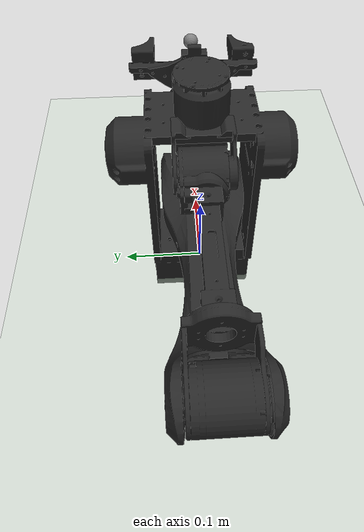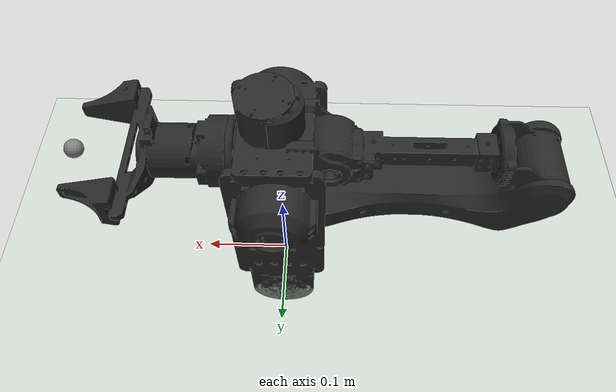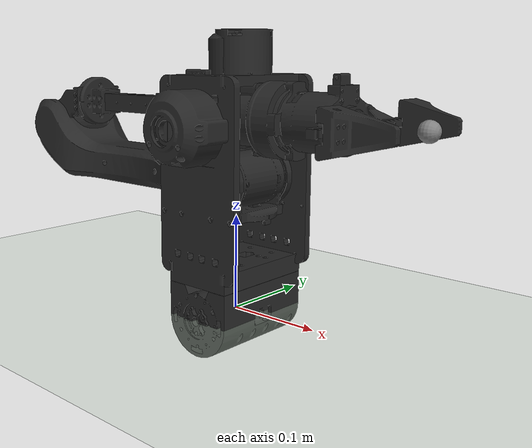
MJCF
<mujoco model="alicia_m_v1_2_follower_arx_px6d">
  <compiler angle="radian" meshdir="../../meshes/Alicia_M_v1_2/arx_px6d/"/>

  <asset>
    <mesh name="base_link" file="base_link.stl"/>
    <mesh name="link1" file="link1.stl"/>
    <mesh name="link2" file="link2.stl"/>
    <mesh name="link3" file="link3.stl"/>
    <mesh name="link4" file="link4.stl"/>
    <mesh name="link5" file="link5.stl"/>
    <mesh name="link6" file="link6.stl"/>
    <mesh name="link7" file="link7.stl"/>
    <mesh name="link8" file="link8.stl"/>
    <texture builtin="gradient" height="100" rgb1=".4 .5 .6" rgb2="0 0 0" type="skybox" width="100"/>
    <texture builtin="checker" height="100" name="texplane" rgb1="1 1 1" rgb2=".8 .9 1" type="2d" width="100"/>
    <material name="MatPlane" reflectance="0.5" texrepeat="1 1" texture="texplane" texuniform="true"/>
    <material name="white" rgba="1 1 1 1" shininess="0.5" specular="0.1"/>
    <material name="black" rgba="0.15 0.15 0.15 1" shininess="0.2" specular="0.05"/>
    <material name="invisible" rgba="1 1 1 0" shininess="0" specular="0"/>
  </asset>

  <worldbody>
    <geom conaffinity="1" condim="3" contype="1" friction="1 .1 .1" group="2" material="MatPlane" name="floor" pos="0 0 0" rgba="0.8 0.9 0.8 1" size="10 10 0.125" type="plane" />
    <light castshadow="false" cutoff="100" diffuse="1 1 1" dir="-0 0 -1.3" directional="true" exponent="1" pos="0 0 1.3" specular=".1 .1 .1" />
    <body name="base_link">
      <inertial pos="0.00193539 -1.742302e-06 0.03326341" quat="0.00719872 -0.707047 0.707094 -0.00719121" mass="1.30948" diaginertia="0.001972403 0.003605423 0.004760723"/>
      <geom type="mesh" contype="0" conaffinity="0" group="1" density="0" rgba="0.15 0.15 0.15 1" mesh="base_link"/>
      <geom type="mesh" rgba="0.15 0.15 0.15 1" mesh="base_link"/>
      <body name="link1" pos="0.0086095 0 0.09725">
        <inertial pos="0.0007257616 -0.000703329 0.03226543" quat="0.704464 -0.709684 -0.0013002 -0.00879293" mass="0.243059" diaginertia="8.609203e-05 9.853203e-05 0.0001089062"/>
        <joint name="joint1" pos="0 0 0" axis="0 0 1" range="-2.7475 2.7475" actuatorfrcrange="-5 5"/>
        <geom type="mesh" contype="0" conaffinity="0" group="1" density="0" rgba="0.15 0.15 0.15 1" mesh="link1"/>
        <geom type="mesh" rgba="0.15 0.15 0.15 1" mesh="link1"/>
        <body name="link2" pos="0 -0.0004 0.0425" quat="0.707105 -0.707108 0 0">
          <inertial pos="-0.1491182 -0.005793626 -0.0007300628" quat="0.70841 -0.704635 0.0287843 -0.0285796" mass="0.579389" diaginertia="0.0003764071 0.002471491 0.002535728"/>
          <joint name="joint2" pos="0 0 0" axis="0 0 -1" range="-3.14 0.0" actuatorfrcrange="-5 5"/>
          <geom type="mesh" contype="0" conaffinity="0" group="1" density="0" rgba="0.15 0.15 0.15 1" mesh="link2"/>
          <geom type="mesh" rgba="0.15 0.15 0.15 1" mesh="link2"/>
          <body name="link3" pos="-0.28185 -0.040324 0" quat="3.67321e-06 -1 -0 -0">
            <inertial pos="0.1301106 0.02219922 -0.001386966" quat="0.998975 0.00189654 -0.000759379 -0.0452298" mass="0.706596" diaginertia="0.0002053409 0.0003110505 0.0003576084"/>
            <joint name="joint3" pos="0 0 0" axis="0 0 -1" range="-3.14 0.0" actuatorfrcrange="-5 5"/>
            <geom type="mesh" contype="0" conaffinity="0" group="1" density="0" rgba="0.15 0.15 0.15 1" mesh="link3"/>
            <geom type="mesh" rgba="0.15 0.15 0.15 1" mesh="link3"/>
            <body name="link4" pos="0.21842 0.028546 0">
              <inertial pos="0.05499051 0.04910492 -0.0002342911" quat="0.710158 -0.700198 0.0526631 -0.0512454" mass="0.365111" diaginertia="0.0001086302 0.0001204708 0.0001523219"/>
              <joint name="joint4" pos="0 0 0" axis="0 0 1" range="-1.57 1.57" actuatorfrcrange="-5 5"/>
              <geom type="mesh" contype="0" conaffinity="0" group="1" density="0" rgba="0.15 0.15 0.15 1" mesh="link4"/>
              <geom type="mesh" rgba="0.15 0.15 0.15 1" mesh="link4"/>
              <body name="link5" pos="0.063 0.034 -0.000675" quat="0.707105 0.707108 0 0">
                <inertial pos="0.008519462 -1.556723e-05 0.03607161" quat="0.564273 0.423785 -0.572868 -0.416923" mass="0.351146" diaginertia="0.0001040971 0.0001045109 0.0001364656"/>
                <joint name="joint5" pos="0 0 0" axis="0 0 1" range="-1.57 1.57" actuatorfrcrange="-5 5"/>
                <geom type="mesh" contype="0" conaffinity="0" group="1" density="0" rgba="0.15 0.15 0.15 1" mesh="link5"/>
                <geom type="mesh" rgba="0.15 0.15 0.15 1" mesh="link5"/>
                <body name="link6" pos="0.03 0 0.04030394" quat="0.707107 0 0.707107 0">
                  <inertial pos="0.0002393657 6.932305e-05 0.05868602" quat="0.706691 -0.000491459 -0.00100087 0.707521" mass="0.504337" diaginertia="0.00014835 0.0002248287 0.0003034646"/>
                  <joint name="joint6" pos="0 0 0" axis="0 0 1" range="-2.791 2.791" actuatorfrcrange="-5 5"/>
                  <geom type="mesh" contype="0" conaffinity="0" group="1" density="0" rgba="0.15 0.15 0.15 1" mesh="link6"/>
                  <geom type="mesh" rgba="0.15 0.15 0.15 1" mesh="link6"/>
                  <body name="link7" pos="0 0.05 0.17531" quat="0.499998 0.5 -0.5 0.500002">
                    <inertial pos="-0.04256548 0.0002092212 -0.01085341" quat="0.0114811 -0.984244 -0.00524382 0.176364" mass="0.0249331" diaginertia="4.749586e-06 6.565212e-06 8.746013e-06"/>
                    <joint name="joint7" pos="0 0 0" axis="0 0 -1" type="slide" range="-0.05 0.0" actuatorfrcrange="-5 5"/>
                    <geom type="mesh" contype="0" conaffinity="0" group="1" density="0" rgba="0.15 0.15 0.15 1" mesh="link7"/>
                    <geom type="mesh" rgba="0.15 0.15 0.15 1" mesh="link7"/>
                  </body>
                  <body name="link8" pos="0 -0.05 0.17531" quat="0.499998 -0.500002 0.5 0.5">
                    <inertial pos="0.04256548 -0.0002092212 -0.01085341" quat="0.984244 -0.0114811 -0.176364 0.00524382" mass="0.0249331" diaginertia="4.749586e-06 6.565212e-06 8.746013e-06"/>
                    <joint name="joint8" pos="0 0 0" axis="0 0 1" type="slide" range="0.0 0.05" actuatorfrcrange="-5 5"/>
                    <geom type="mesh" contype="0" conaffinity="0" group="1" density="0" rgba="0.15 0.15 0.15 1" mesh="link8"/>
                    <geom type="mesh" rgba="0.15 0.15 0.15 1" mesh="link8"/>
                  </body>
                  <body name="tool0" pos="0 0 0.1735">
                    <inertial pos="0 0 0" quat="1 0 0 0" mass="0.001" diaginertia="1e-08 1e-08 1e-08"/>
                    <geom type="sphere" size="0.005" contype="0" conaffinity="0" group="1" density="0" rgba="0 1 0 1"/>
                    <site name="tool0_site" pos="0 0 0" size="0.01" type="sphere"/>
                  </body>
                </body>
              </body>
            </body>
          </body>
        </body>
      </body>
    </body>
  </worldbody>

  <contact>
    <exclude body1="base_link" body2="link1"/>
    <exclude body1="link1" body2="link2"/>
    <exclude body1="link2" body2="link3"/>
    <exclude body1="link3" body2="link4"/>
    <exclude body1="link4" body2="link5"/>
    <exclude body1="link5" body2="link6"/>
    <exclude body1="link6" body2="link7"/>
    <exclude body1="link6" body2="link8"/>
    <exclude body1="link7" body2="link8"/>
  </contact>

</mujoco>
